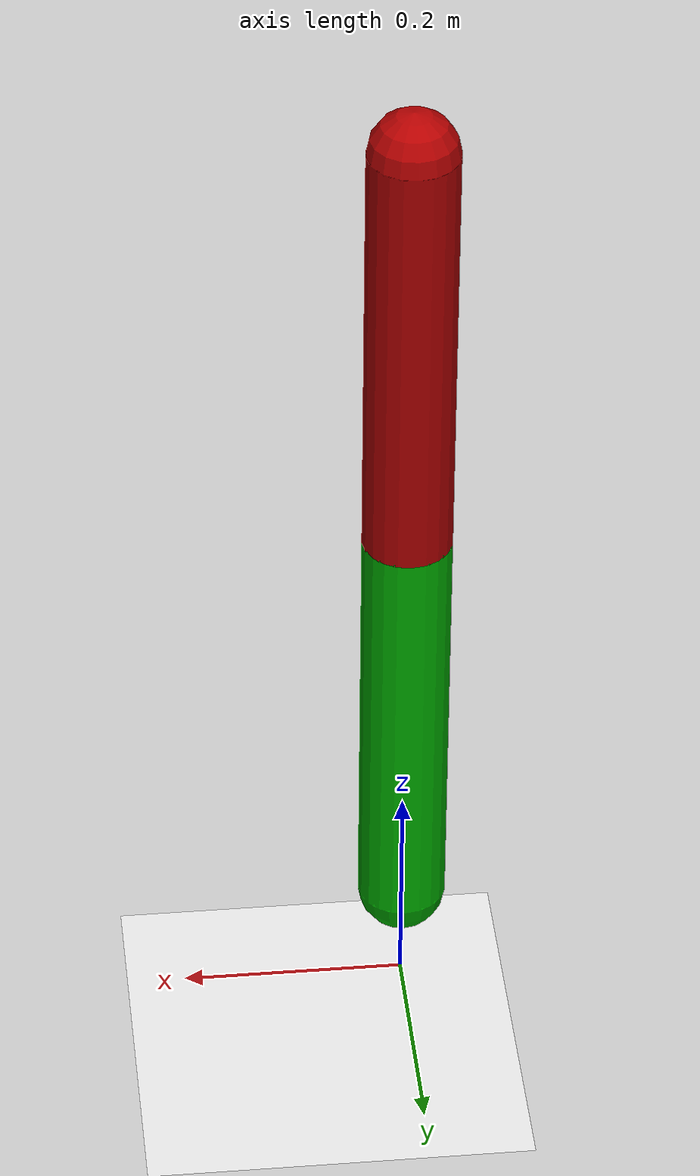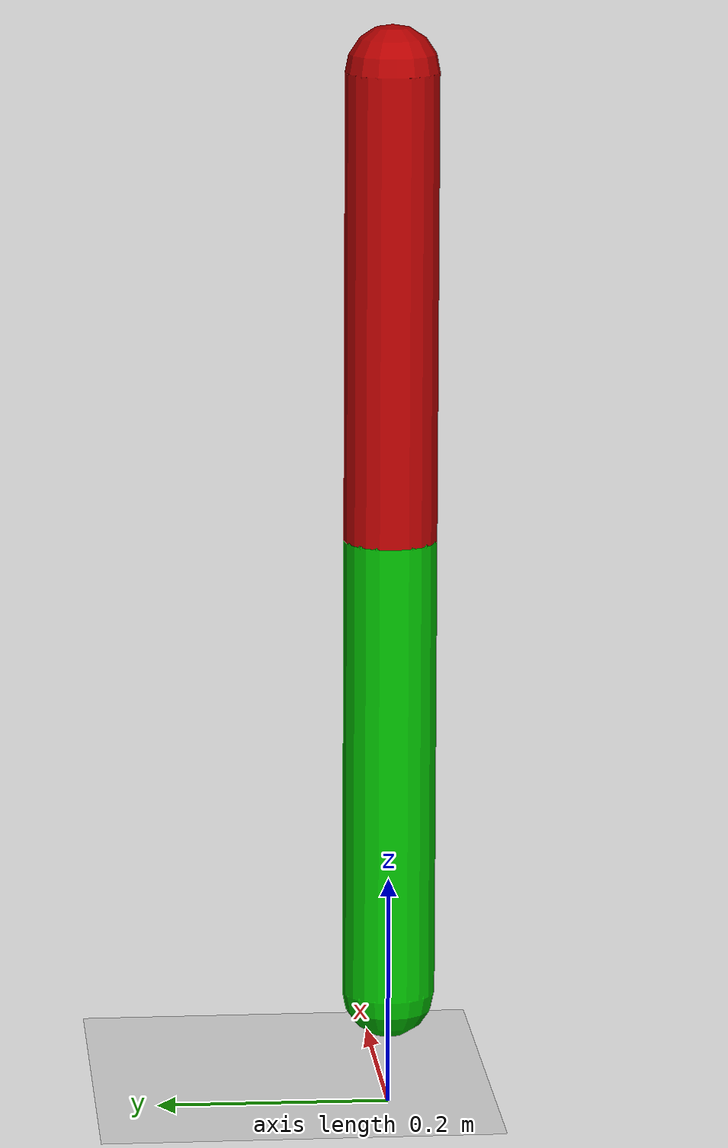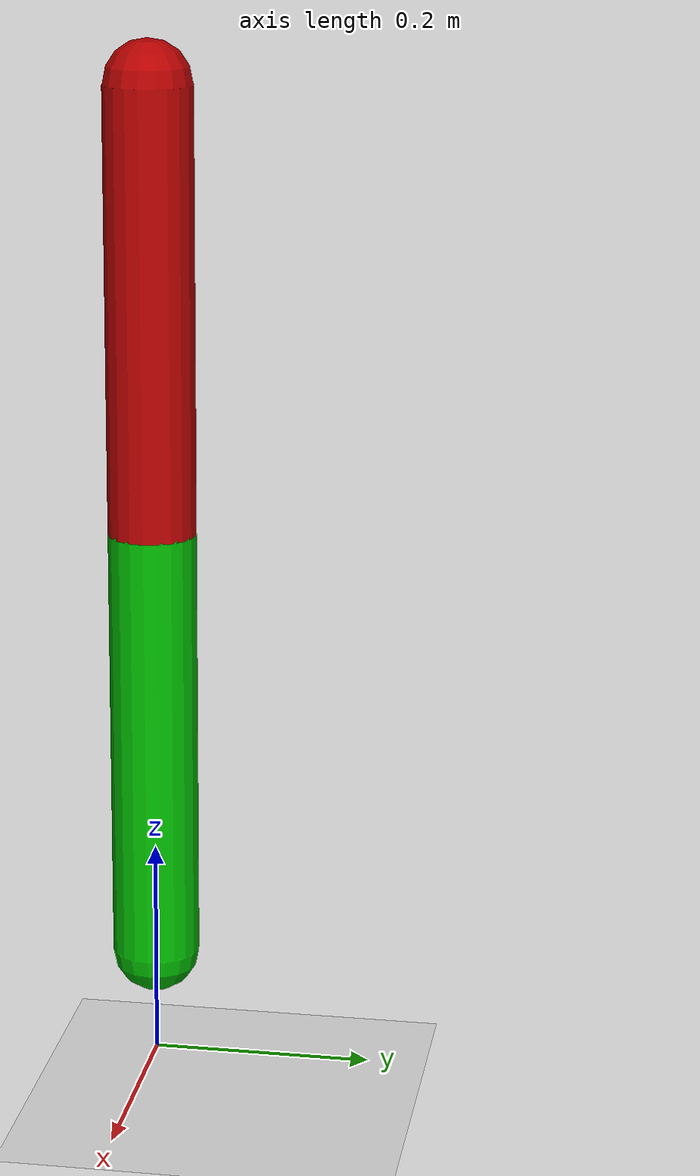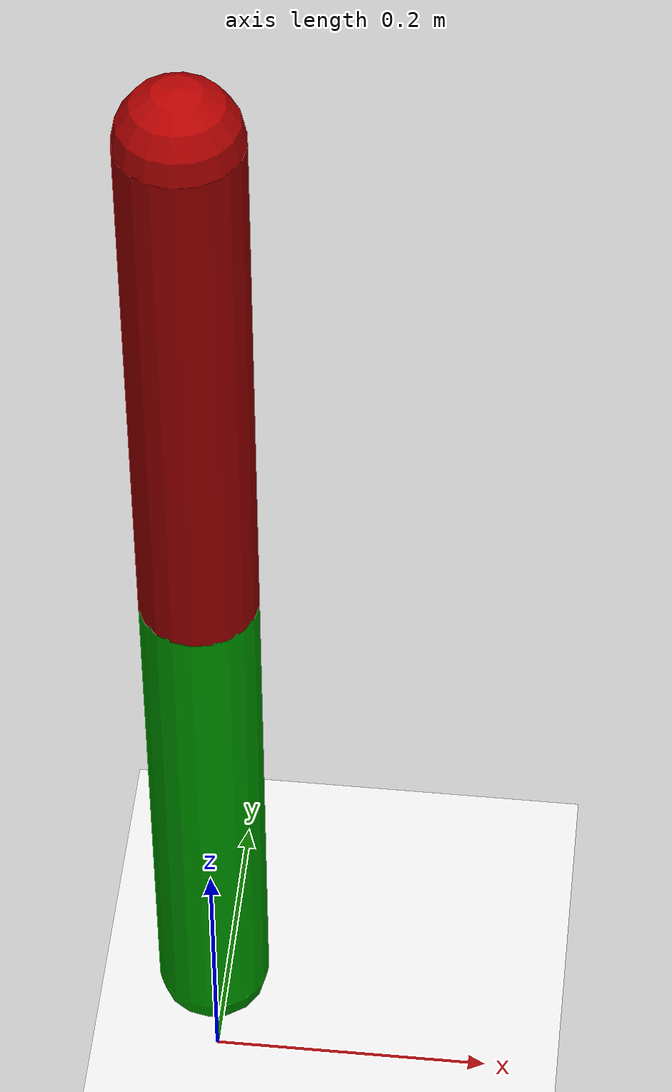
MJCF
<mujoco>
  <option gravity="0 0 -9.81"/> <worldbody>
    <light diffuse=".5 .5 .5" pos="0 0 3" dir="0 0 -1"/>
    <geom type="plane" size="1 1 0.1" rgba=".9 .9 .9 1"/> <body name="link1" pos="0 0 0.1">
      <joint name="joint1" type="hinge" axis="0 1 0"/> <geom type="capsule" fromto="0 0 0 0 0 0.4" size="0.04" rgba="0 .7 0 1"/>

      <body name="link2" pos="0 0 0.4">
        <joint name="joint2" type="hinge" axis="0 1 0"/>
        <geom type="capsule" fromto="0 0 0 0 0 0.4" size="0.04" rgba=".7 0 0 1"/>
        <body name="hand" pos="0 0 0.4"> <site name="end_effector" pos="0 0 0" size="0.02" rgba="1 1 0 1"/>
        </body>
      </body>
    </body>
  </worldbody>

  <actuator>
    <motor name="motor1" joint="joint1" gear="100"/>
    <motor name="motor2" joint="joint2" gear="50"/>
  </actuator>
</mujoco>
